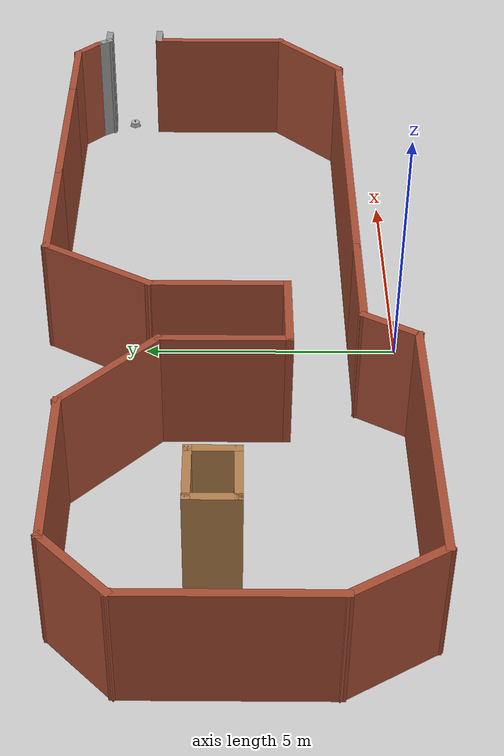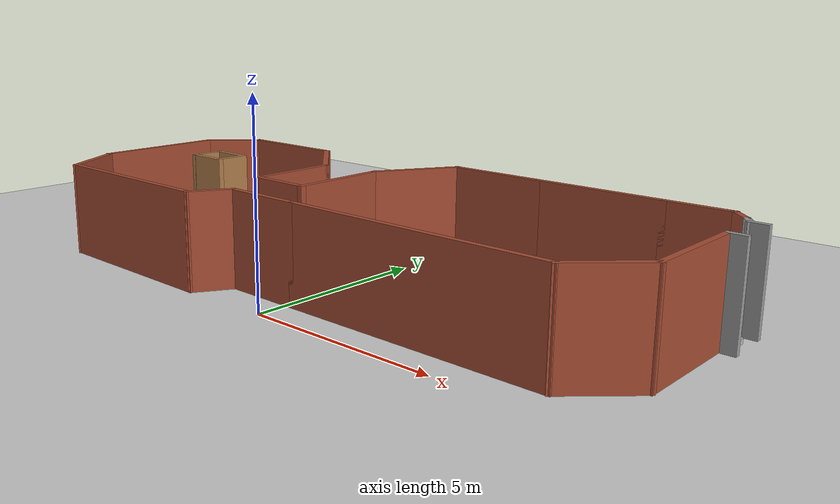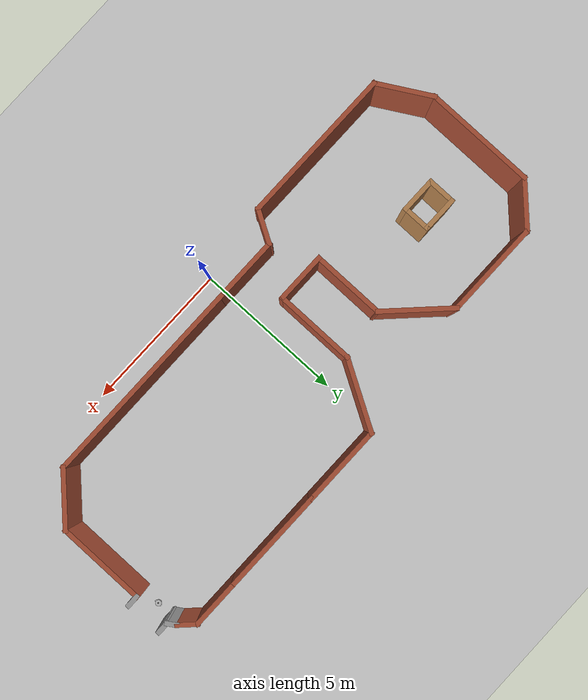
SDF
<sdf version="1.7">
 <world name="default">
  <light name="sun" type="directional">
   <pose>0 0 10 0 -0 0</pose>
   <diffuse>0.8 0.8 0.8 1</diffuse>
   <specular>0.2 0.2 0.2 1</specular>
   <attenuation>
    <range>1000</range>
    <constant>0.9</constant>
    <linear>0.01</linear>
    <quadratic>0.001</quadratic>
   </attenuation>
   <direction>-0.5 0.1 -0.9</direction>
   <spot><inner_angle>0</inner_angle><outer_angle>0</outer_angle><falloff>0</falloff></spot>
  </light>
  <model name="ground_plane">
   <static>1</static>
   <link name="link">
    <collision name="collision">
     <geometry><plane><normal>0 0 1</normal><size>100 100</size></plane></geometry>
     <surface><friction><ode><mu>100</mu><mu2>50</mu2></ode></friction></surface>
    </collision>
    <visual name="visual">
     <cast_shadows>0</cast_shadows>
     <geometry><plane><normal>0 0 1</normal><size>100 100</size></plane></geometry>
     <material>
      <script><uri>file://media/materials/scripts/gazebo.material</uri><name>Gazebo/Grey</name></script>
     </material>
    </visual>
   </link>
  </model>
  <gravity>0 0 -9.8</gravity>
  <magnetic_field>6e-06 2.3e-05 -4.2e-05</magnetic_field>
  <atmosphere type="adiabatic"/>
  <physics type="ode">
   <max_step_size>0.001</max_step_size>
   <real_time_factor>1</real_time_factor>
   <real_time_update_rate>1000</real_time_update_rate>
  </physics>
  <scene><ambient>0.4 0.4 0.4 1</ambient><background>0.7 0.7 0.7 1</background><shadows>1</shadows></scene>
  <audio><device>default</device></audio>
  <spherical_coordinates>
   <surface_model>EARTH_WGS84</surface_model>
   <latitude_deg>0</latitude_deg>
   <longitude_deg>0</longitude_deg>
   <elevation>0</elevation>
   <heading_deg>0</heading_deg>
  </spherical_coordinates>
  <model name="world-modul">
   <pose>0.13036 3.82608 0 0 -0 0</pose>
   <link name="Wall_0">
    <collision name="Wall_0_Collision">
     <geometry><box><size>2.75 0.15 2.5</size></box></geometry>
     <pose>0 0 1.25 0 -0 0</pose>
    </collision>
    <visual name="Wall_0_Visual">
     <pose>0 0 1.25 0 -0 0</pose>
     <geometry><box><size>2.75 0.15 2.5</size></box></geometry>
     <material>
      <script><uri>file://media/materials/scripts/gazebo.material</uri><name>Gazebo/Bricks</name></script>
      <ambient>1 1 1 1</ambient>
     </material>
     <meta><layer>0</layer></meta>
    </visual>
    <pose>1.39203 3.04502 0 0 -0 3.14159</pose>
   </link>
   <link name="Wall_1">
    <collision name="Wall_1_Collision">
     <geometry><box><size>2.5 0.15 2.5</size></box></geometry>
     <pose>0 0 1.25 0 -0 0</pose>
    </collision>
    <visual name="Wall_1_Visual">
     <pose>0 0 1.25 0 -0 0</pose>
     <geometry><box><size>2.5 0.15 2.5</size></box></geometry>
     <material>
      <script><uri>file://media/materials/scripts/gazebo.material</uri><name>Gazebo/Bricks</name></script>
      <ambient>1 1 1 1</ambient>
     </material>
     <meta><layer>0</layer></meta>
    </visual>
    <pose>-0.495469 2.02744 0 0 -0 -2.0944</pose>
   </link>
   <link name="Wall_10">
    <collision name="Wall_10_Collision">
     <geometry><box><size>5.25 0.15 2.5</size></box></geometry>
     <pose>0 0 1.25 0 -0 0</pose>
    </collision>
    <visual name="Wall_10_Visual">
     <pose>0 0 1.25 0 -0 0</pose>
     <geometry><box><size>5.25 0.15 2.5</size></box></geometry>
     <material>
      <script><uri>file://media/materials/scripts/gazebo.material</uri><name>Gazebo/Bricks</name></script>
      <ambient>1 1 1 1</ambient>
     </material>
     <meta><layer>0</layer></meta>
    </visual>
    <pose>-5.10104 -3.91196 0 0 -0 0</pose>
   </link>
   <link name="Wall_11">
    <collision name="Wall_11_Collision">
     <geometry><box><size>1.25 0.15 2.5</size></box></geometry>
     <pose>0 0 1.25 0 -0 0</pose>
    </collision>
    <visual name="Wall_11_Visual">
     <pose>0 0 1.25 0 -0 0</pose>
     <geometry><box><size>1.25 0.15 2.5</size></box></geometry>
     <material>
      <script><uri>file://media/materials/scripts/gazebo.material</uri><name>Gazebo/Bricks</name></script>
      <ambient>1 1 1 1</ambient>
     </material>
     <meta><layer>0</layer></meta>
    </visual>
    <pose>-2.27604 -3.43565 0 0 -0 1.0472</pose>
   </link>
   <link name="Wall_12">
    <collision name="Wall_12_Collision">
     <geometry><box><size>2.25 0.15 2.5</size></box></geometry>
     <pose>0 0 1.25 0 -0 0</pose>
    </collision>
    <visual name="Wall_12_Visual">
     <pose>0 0 1.25 0 -0 0</pose>
     <geometry><box><size>2.25 0.15 2.5</size></box></geometry>
     <material>
      <script><uri>file://media/materials/scripts/gazebo.material</uri><name>Gazebo/Bricks</name></script>
      <ambient>1 1 1 1</ambient>
     </material>
     <meta><layer>0</layer></meta>
    </visual>
    <pose>-0.95104 -2.95933 0 0 -0 0</pose>
   </link>
   <link name="Wall_13">
    <collision name="Wall_13_Collision">
     <geometry><box><size>7 0.15 2.5</size></box></geometry>
     <pose>0 0 1.25 0 -0 0</pose>
    </collision>
    <visual name="Wall_13_Visual">
     <pose>0 0 1.25 0 -0 0</pose>
     <geometry><box><size>7 0.15 2.5</size></box></geometry>
     <material>
      <script><uri>file://media/materials/scripts/gazebo.material</uri><name>Gazebo/Bricks</name></script>
      <ambient>1 1 1 1</ambient>
     </material>
     <meta><layer>0</layer></meta>
    </visual>
    <pose>3.52396 -2.95933 0 0 -0 0</pose>
   </link>
   <link name="Wall_14">
    <collision name="Wall_14_Collision">
     <geometry><box><size>2 0.15 2.5</size></box></geometry>
     <pose>0 0 1.25 0 -0 0</pose>
    </collision>
    <visual name="Wall_14_Visual">
     <pose>0 0 1.25 0 -0 0</pose>
     <geometry><box><size>2 0.15 2.5</size></box></geometry>
     <material>
      <script><uri>file://media/materials/scripts/gazebo.material</uri><name>Gazebo/Bricks</name></script>
      <ambient>1 1 1 1</ambient>
     </material>
     <meta><layer>0</layer></meta>
    </visual>
    <pose>7.60303 -2.30526 0 0 -0 0.785398</pose>
   </link>
   <link name="Wall_15">
    <collision name="Wall_15_Collision">
     <geometry><box><size>3 0.15 2.5</size></box></geometry>
     <pose>0 0 1.25 0 -0 0</pose>
    </collision>
    <visual name="Wall_15_Visual">
     <pose>0 0 1.25 0 -0 0</pose>
     <geometry><box><size>3 0.15 2.5</size></box></geometry>
     <material>
      <script><uri>file://media/materials/scripts/gazebo.material</uri><name>Gazebo/Bricks</name></script>
      <ambient>1 1 1 1</ambient>
     </material>
     <meta><layer>0</layer></meta>
    </visual>
    <pose>8.25711 -0.226184 0 0 -0 1.5708</pose>
   </link>
   <link name="Wall_18">
    <collision name="Wall_18_Collision">
     <geometry><box><size>3.5 0.15 2.5</size></box></geometry>
     <pose>0 0 1.25 0 -0 0</pose>
    </collision>
    <visual name="Wall_18_Visual">
     <pose>0 0 1.25 0 -0 0</pose>
     <geometry><box><size>3.5 0.15 2.5</size></box></geometry>
     <material>
      <script><uri>file://media/materials/scripts/gazebo.material</uri><name>Gazebo/Bricks</name></script>
      <ambient>1 1 1 1</ambient>
     </material>
     <meta><layer>0</layer></meta>
    </visual>
    <pose>4.36703 3.04502 0 0 -0 0</pose>
   </link>
   <link name="Wall_19">
    <collision name="Wall_19_Collision">
     <geometry><box><size>1.75 0.15 2.5</size></box></geometry>
     <pose>0 0 1.25 0 -0 0</pose>
    </collision>
    <visual name="Wall_19_Visual">
     <pose>0 0 1.25 0 -0 0</pose>
     <geometry><box><size>1.75 0.15 2.5</size></box></geometry>
     <material>
      <script><uri>file://media/materials/scripts/gazebo.material</uri><name>Gazebo/Bricks</name></script>
      <ambient>1 1 1 1</ambient>
     </material>
     <meta><layer>0</layer></meta>
    </visual>
    <pose>6.84203 3.04502 0 0 -0 0</pose>
   </link>
   <link name="Wall_2">
    <collision name="Wall_2_Collision">
     <geometry><box><size>2.75 0.15 2.5</size></box></geometry>
     <pose>0 0 1.25 0 -0 0</pose>
    </collision>
    <visual name="Wall_2_Visual">
     <pose>0 0 1.25 0 -0 0</pose>
     <geometry><box><size>2.75 0.15 2.5</size></box></geometry>
     <material>
      <script><uri>file://media/materials/scripts/gazebo.material</uri><name>Gazebo/Bricks</name></script>
      <ambient>1 1 1 1</ambient>
     </material>
     <meta><layer>0</layer></meta>
    </visual>
    <pose>-1.08297 -0.290142 0 0 -0 -1.5708</pose>
   </link>
   <link name="Wall_20">
    <collision name="Wall_20_Collision">
     <geometry><box><size>0.75 0.15 2.5</size></box></geometry>
     <pose>0 0 1.25 0 -0 0</pose>
    </collision>
    <visual name="Wall_20_Visual">
     <pose>0 0 1.25 0 -0 0</pose>
     <geometry><box><size>0.75 0.15 2.5</size></box></geometry>
     <material>
      <script><uri>file://media/materials/scripts/gazebo.material</uri><name>Gazebo/Bricks</name></script>
      <ambient>1 1 1 1</ambient>
     </material>
     <meta><layer>0</layer></meta>
    </visual>
    <pose>7.85416 2.83289 0 0 -0 -0.785398</pose>
   </link>
   <link name="Wall_21">
    <collision name="Wall_21_Collision">
     <geometry><box><size>0.447066 0.15 2.5</size></box></geometry>
     <pose>0 0 1.25 0 -0 0</pose>
    </collision>
    <visual name="Wall_21_Visual">
     <pose>0 0 1.25 0 -0 0</pose>
     <geometry><box><size>0.447066 0.15 2.5</size></box></geometry>
     <material>
      <script><uri>file://media/materials/scripts/gazebo.material</uri><name>Gazebo/Grey</name></script>
      <ambient>1 1 1 1</ambient>
     </material>
     <meta><layer>0</layer></meta>
    </visual>
    <pose>8.14845 2.49701 0 0 -0 -0.984698</pose>
   </link>
   <link name="Wall_22">
    <collision name="Wall_22_Collision">
     <geometry><box><size>0.5 0.15 2.5</size></box></geometry>
     <pose>0 0 1.25 0 -0 0</pose>
    </collision>
    <visual name="Wall_22_Visual">
     <pose>0 0 1.25 0 -0 0</pose>
     <geometry><box><size>0.5 0.15 2.5</size></box></geometry>
     <material>
      <script><uri>file://media/materials/scripts/gazebo.material</uri><name>Gazebo/Grey</name></script>
      <ambient>1 1 1 1</ambient>
     </material>
     <meta><layer>0</layer></meta>
    </visual>
    <pose>8.39805 2.37327 0 0 -0 0</pose>
   </link>
   <link name="Wall_24">
    <collision name="Wall_24_Collision">
     <geometry><box><size>0.5 0.15 2.5</size></box></geometry>
     <pose>0 0 1.25 0 -0 0</pose>
    </collision>
    <visual name="Wall_24_Visual">
     <pose>0 0 1.25 0 -0 0</pose>
     <geometry><box><size>0.5 0.15 2.5</size></box></geometry>
     <material>
      <script><uri>file://media/materials/scripts/gazebo.material</uri><name>Gazebo/Grey</name></script>
      <ambient>1 1 1 1</ambient>
     </material>
     <meta><layer>0</layer></meta>
    </visual>
    <pose>8.43211 1.19882 0 0 -0 0</pose>
   </link>
   <link name="Wall_3">
    <collision name="Wall_3_Collision">
     <geometry><box><size>1.75 0.15 2.5</size></box></geometry>
     <pose>0 0 1.25 0 -0 0</pose>
    </collision>
    <visual name="Wall_3_Visual">
     <pose>0 0 1.25 0 -0 0</pose>
     <geometry><box><size>1.75 0.15 2.5</size></box></geometry>
     <material>
      <script><uri>file://media/materials/scripts/gazebo.material</uri><name>Gazebo/Bricks</name></script>
      <ambient>1 1 1 1</ambient>
     </material>
     <meta><layer>0</layer></meta>
    </visual>
    <pose>-1.88297 -1.59014 0 0 -0 3.14159</pose>
   </link>
   <link name="Wall_4">
    <collision name="Wall_4_Collision">
     <geometry><box><size>2.5 0.15 2.5</size></box></geometry>
     <pose>0 0 1.25 0 -0 0</pose>
    </collision>
    <visual name="Wall_4_Visual">
     <pose>0 0 1.25 0 -0 0</pose>
     <geometry><box><size>2.5 0.15 2.5</size></box></geometry>
     <material>
      <script><uri>file://media/materials/scripts/gazebo.material</uri><name>Gazebo/Bricks</name></script>
      <ambient>1 1 1 1</ambient>
     </material>
     <meta><layer>0</layer></meta>
    </visual>
    <pose>-2.68297 -0.415142 0 0 -0 1.5708</pose>
   </link>
   <link name="Wall_48">
    <collision name="Wall_48_Collision">
     <geometry><box><size>1.25 0.15 2.5</size></box></geometry>
     <pose>0 0 1.25 0 -0 0</pose>
    </collision>
    <visual name="Wall_48_Visual">
     <pose>0 0 1.25 0 -0 0</pose>
     <geometry><box><size>1.25 0.15 2.5</size></box></geometry>
     <material>
      <script><uri>file://media/materials/scripts/gazebo.material</uri><name>Gazebo/Wood</name></script>
      <ambient>1 1 1 1</ambient>
     </material>
     <meta><layer>0</layer></meta>
    </visual>
    <pose>-6.05415 0.17022 0 0 -0 0</pose>
   </link>
   <link name="Wall_49">
    <collision name="Wall_49_Collision">
     <geometry><box><size>1 0.15 2.5</size></box></geometry>
     <pose>0 0 1.25 0 -0 0</pose>
    </collision>
    <visual name="Wall_49_Visual">
     <pose>0 0 1.25 0 -0 0</pose>
     <geometry><box><size>1 0.15 2.5</size></box></geometry>
     <material>
      <script><uri>file://media/materials/scripts/gazebo.material</uri><name>Gazebo/Wood</name></script>
      <ambient>1 1 1 1</ambient>
     </material>
     <meta><layer>0</layer></meta>
    </visual>
    <pose>-5.50415 -0.25478 0 0 -0 -1.5708</pose>
   </link>
   <link name="Wall_5">
    <collision name="Wall_5_Collision">
     <geometry><box><size>2.5 0.15 2.5</size></box></geometry>
     <pose>0 0 1.25 0 -0 0</pose>
    </collision>
    <visual name="Wall_5_Visual">
     <pose>0 0 1.25 0 -0 0</pose>
     <geometry><box><size>2.5 0.15 2.5</size></box></geometry>
     <material>
      <script><uri>file://media/materials/scripts/gazebo.material</uri><name>Gazebo/Bricks</name></script>
      <ambient>1 1 1 1</ambient>
     </material>
     <meta><layer>0</layer></meta>
    </visual>
    <pose>-3.51382 1.59071 0 0 -0 2.35619</pose>
   </link>
   <link name="Wall_50">
    <collision name="Wall_50_Collision">
     <geometry><box><size>1.25 0.15 2.5</size></box></geometry>
     <pose>0 0 1.25 0 -0 0</pose>
    </collision>
    <visual name="Wall_50_Visual">
     <pose>0 0 1.25 0 -0 0</pose>
     <geometry><box><size>1.25 0.15 2.5</size></box></geometry>
     <material>
      <script><uri>file://media/materials/scripts/gazebo.material</uri><name>Gazebo/Wood</name></script>
      <ambient>1 1 1 1</ambient>
     </material>
     <meta><layer>0</layer></meta>
    </visual>
    <pose>-6.05415 -0.67978 0 0 -0 3.14159</pose>
   </link>
   <link name="Wall_51">
    <collision name="Wall_51_Collision">
     <geometry><box><size>1 0.15 2.5</size></box></geometry>
     <pose>0 0 1.25 0 -0 0</pose>
    </collision>
    <visual name="Wall_51_Visual">
     <pose>0 0 1.25 0 -0 0</pose>
     <geometry><box><size>1 0.15 2.5</size></box></geometry>
     <material>
      <script><uri>file://media/materials/scripts/gazebo.material</uri><name>Gazebo/Wood</name></script>
      <ambient>1 1 1 1</ambient>
     </material>
     <meta><layer>0</layer></meta>
    </visual>
    <pose>-6.60416 -0.25478 0 0 -0 1.5708</pose>
   </link>
   <link name="Wall_6">
    <collision name="Wall_6_Collision">
     <geometry><box><size>3.25 0.15 2.5</size></box></geometry>
     <pose>0 0 1.25 0 -0 0</pose>
    </collision>
    <visual name="Wall_6_Visual">
     <pose>0 0 1.25 0 -0 0</pose>
     <geometry><box><size>3.25 0.15 2.5</size></box></geometry>
     <material>
      <script><uri>file://media/materials/scripts/gazebo.material</uri><name>Gazebo/Bricks</name></script>
      <ambient>1 1 1 1</ambient>
     </material>
     <meta><layer>0</layer></meta>
    </visual>
    <pose>-5.89467 2.42156 0 0 -0 3.14159</pose>
   </link>
   <link name="Wall_7">
    <collision name="Wall_7_Collision">
     <geometry><box><size>1.75 0.15 2.5</size></box></geometry>
     <pose>0 0 1.25 0 -0 0</pose>
    </collision>
    <visual name="Wall_7_Visual">
     <pose>0 0 1.25 0 -0 0</pose>
     <geometry><box><size>1.75 0.15 2.5</size></box></geometry>
     <material>
      <script><uri>file://media/materials/scripts/gazebo.material</uri><name>Gazebo/Bricks</name></script>
      <ambient>1 1 1 1</ambient>
     </material>
     <meta><layer>0</layer></meta>
    </visual>
    <pose>-8.01036 1.85587 0 0 -0 -2.35619</pose>
   </link>
   <link name="Wall_8">
    <collision name="Wall_8_Collision">
     <geometry><box><size>3.75 0.15 2.5</size></box></geometry>
     <pose>0 0 1.25 0 -0 0</pose>
    </collision>
    <visual name="Wall_8_Visual">
     <pose>0 0 1.25 0 -0 0</pose>
     <geometry><box><size>3.75 0.15 2.5</size></box></geometry>
     <material>
      <script><uri>file://media/materials/scripts/gazebo.material</uri><name>Gazebo/Bricks</name></script>
      <ambient>1 1 1 1</ambient>
     </material>
     <meta><layer>0</layer></meta>
    </visual>
    <pose>-8.57604 -0.509812 0 0 -0 -1.5708</pose>
   </link>
   <link name="Wall_9">
    <collision name="Wall_9_Collision">
     <geometry><box><size>2 0.15 2.5</size></box></geometry>
     <pose>0 0 1.25 0 -0 0</pose>
    </collision>
    <visual name="Wall_9_Visual">
     <pose>0 0 1.25 0 -0 0</pose>
     <geometry><box><size>2 0.15 2.5</size></box></geometry>
     <material>
      <script><uri>file://media/materials/scripts/gazebo.material</uri><name>Gazebo/Bricks</name></script>
      <ambient>1 1 1 1</ambient>
     </material>
     <meta><layer>0</layer></meta>
    </visual>
    <pose>-8.11354 -3.11089 0 0 -0 -1.0472</pose>
   </link>
   <static>1</static>
  </model>
  <model name="my_robot">
   <link name="base_footprint">
    <inertial>
     <pose>0.002857 0 0.095 0 -0 0</pose>
     <mass>0.42</mass>
     <inertia>
      <ixx>0.0134043</ixx>
      <ixy>0</ixy>
      <ixz>0.000114</ixz>
      <iyy>0.0134728</iyy>
      <iyz>0</iyz>
      <izz>0.0211486</izz>
     </inertia>
    </inertial>
    <collision name="base_footprint_fixed_joint_lump__base_link_collision">
     <pose>0 0 0.076 0 -0 0</pose>
     <geometry><cylinder><length>0.12</length><radius>0.1</radius></cylinder></geometry>
    </collision>
    <collision name="base_footprint_fixed_joint_lump__caster_link_collision_1">
     <pose>0.06 0 0 1.57079 -0 0</pose>
     <geometry><sphere><radius>0.016</radius></sphere></geometry>
     <surface>
      <contact><ode><kp>1e+06</kp><kd>10</kd></ode></contact>
      <friction><ode><mu>0</mu><mu2>0</mu2></ode></friction>
     </surface>
    </collision>
    <collision name="base_footprint_fixed_joint_lump__imu_link_collision_2">
     <pose>0 0 0.096 0 -0 0</pose>
     <geometry><box><size>0.02 0.02 0.02</size></box></geometry>
    </collision>
    <collision name="base_footprint_fixed_joint_lump__laser_link_collision_3">
     <pose>0 0 0.151 0 -0 0</pose>
     <geometry><cylinder><length>0.02</length><radius>0.02</radius></cylinder></geometry>
    </collision>
    <visual name="base_footprint_fixed_joint_lump__base_link_visual">
     <pose>0 0 0.076 0 -0 0</pose>
     <geometry><cylinder><length>0.12</length><radius>0.1</radius></cylinder></geometry>
    </visual>
    <visual name="base_footprint_fixed_joint_lump__caster_link_visual_1">
     <pose>0.06 0 0 1.57079 -0 0</pose>
     <geometry><sphere><radius>0.016</radius></sphere></geometry>
     <material>
      <script><name>Gazebo/Black</name><uri>file://media/materials/scripts/gazebo.material</uri></script>
     </material>
    </visual>
    <visual name="base_footprint_fixed_joint_lump__imu_link_visual_2">
     <pose>0 0 0.096 0 -0 0</pose>
     <geometry><box><size>0.02 0.02 0.02</size></box></geometry>
    </visual>
    <visual name="base_footprint_fixed_joint_lump__laser_link_visual_3">
     <pose>0 0 0.151 0 -0 0</pose>
     <geometry><cylinder><length>0.02</length><radius>0.02</radius></cylinder></geometry>
     <material>
      <script><name>Gazebo/Black</name><uri>file://media/materials/scripts/gazebo.material</uri></script>
     </material>
    </visual>
    <sensor name="imu_sensor" type="imu">
     <plugin name="imu_plugin" filename="libgazebo_ros_imu_sensor.so">
      <ros><namespace>/</namespace><remapping>~/out:=imu</remapping></ros>
      <initial_orientation_as_reference>0</initial_orientation_as_reference>
     </plugin>
     <always_on>1</always_on>
     <update_rate>100</update_rate>
     <visualize>1</visualize>
     <imu>
      <angular_velocity>
       <x>
        <noise type="gaussian">
         <mean>0</mean>
         <stddev>0.0002</stddev>
         <bias_mean>7.5e-06</bias_mean>
         <bias_stddev>8e-07</bias_stddev>
        </noise>
       </x>
       <y>
        <noise type="gaussian">
         <mean>0</mean>
         <stddev>0.0002</stddev>
         <bias_mean>7.5e-06</bias_mean>
         <bias_stddev>8e-07</bias_stddev>
        </noise>
       </y>
       <z>
        <noise type="gaussian">
         <mean>0</mean>
         <stddev>0.0002</stddev>
         <bias_mean>7.5e-06</bias_mean>
         <bias_stddev>8e-07</bias_stddev>
        </noise>
       </z>
      </angular_velocity>
      <linear_acceleration>
       <x>
        <noise type="gaussian">
         <mean>0</mean>
         <stddev>0.017</stddev>
         <bias_mean>0.1</bias_mean>
         <bias_stddev>0.001</bias_stddev>
        </noise>
       </x>
       <y>
        <noise type="gaussian">
         <mean>0</mean>
         <stddev>0.017</stddev>
         <bias_mean>0.1</bias_mean>
         <bias_stddev>0.001</bias_stddev>
        </noise>
       </y>
       <z>
        <noise type="gaussian">
         <mean>0</mean>
         <stddev>0.017</stddev>
         <bias_mean>0.1</bias_mean>
         <bias_stddev>0.001</bias_stddev>
        </noise>
       </z>
      </linear_acceleration>
     </imu>
     <pose>0 0 0.096 0 -0 0</pose>
    </sensor>
    <sensor name="laser_sensor" type="ray">
     <always_on>1</always_on>
     <visualize>1</visualize>
     <update_rate>5</update_rate>
     <ray>
      <scan>
       <horizontal>
        <samples>360</samples>
        <resolution>1</resolution>
        <min_angle>0</min_angle>
        <max_angle>6.28</max_angle>
       </horizontal>
       <vertical><samples>1</samples><min_angle>0</min_angle><max_angle>0</max_angle></vertical>
      </scan>
      <range><min>0.12</min><max>3.5</max><resolution>0.015</resolution></range>
      <noise><type>gaussian</type><mean>0</mean><stddev>0.01</stddev></noise>
     </ray>
     <plugin name="laserscan" filename="libgazebo_ros_ray_sensor.so">
      <ros><remapping>~/out:=scan</remapping></ros>
      <output_type>sensor_msgs/LaserScan</output_type>
      <frame_name>laser_link</frame_name>
     </plugin>
     <pose>0 0 0.151 0 -0 0</pose>
    </sensor>
   </link>
   <joint name="left_wheel_joint" type="revolute">
    <pose relative_to="base_footprint">-0.02 0.1 0.016 0 -0 0</pose>
    <parent>base_footprint</parent>
    <child>left_wheel_link</child>
    <axis>
     <xyz>0 1 0</xyz>
     <limit><lower>-1e+16</lower><upper>1e+16</upper></limit>
     <dynamics><spring_reference>0</spring_reference><spring_stiffness>0</spring_stiffness></dynamics>
    </axis>
   </joint>
   <link name="left_wheel_link">
    <pose relative_to="left_wheel_joint">0 0 0 0 -0 0</pose>
    <inertial>
     <mass>0.2</mass>
     <inertia>
      <ixx>0.000190417</ixx>
      <ixy>0</ixy>
      <ixz>0</ixz>
      <iyy>0.0001904</iyy>
      <iyz>0</iyz>
      <izz>0.00036</izz>
     </inertia>
    </inertial>
    <collision name="left_wheel_link_collision">
     <pose>0 0 0 1.57079 -0 0</pose>
     <geometry><cylinder><length>0.04</length><radius>0.032</radius></cylinder></geometry>
    </collision>
    <visual name="left_wheel_link_visual">
     <pose>0 0 0 1.57079 -0 0</pose>
     <geometry><cylinder><length>0.04</length><radius>0.032</radius></cylinder></geometry>
    </visual>
   </link>
   <joint name="right_wheel_joint" type="revolute">
    <pose relative_to="base_footprint">-0.02 -0.1 0.016 0 -0 0</pose>
    <parent>base_footprint</parent>
    <child>right_wheel_link</child>
    <axis>
     <xyz>0 1 0</xyz>
     <limit><lower>-1e+16</lower><upper>1e+16</upper></limit>
     <dynamics><spring_reference>0</spring_reference><spring_stiffness>0</spring_stiffness></dynamics>
    </axis>
   </joint>
   <link name="right_wheel_link">
    <pose relative_to="right_wheel_joint">0 0 0 0 -0 0</pose>
    <inertial>
     <mass>0.2</mass>
     <inertia>
      <ixx>0.000190417</ixx>
      <ixy>0</ixy>
      <ixz>0</ixz>
      <iyy>0.0001904</iyy>
      <iyz>0</iyz>
      <izz>0.00036</izz>
     </inertia>
    </inertial>
    <collision name="right_wheel_link_collision">
     <pose>0 0 0 1.57079 -0 0</pose>
     <geometry><cylinder><length>0.04</length><radius>0.032</radius></cylinder></geometry>
    </collision>
    <visual name="right_wheel_link_visual">
     <pose>0 0 0 1.57079 -0 0</pose>
     <geometry><cylinder><length>0.04</length><radius>0.032</radius></cylinder></geometry>
    </visual>
   </link>
   <static>0</static>
   <plugin name="diff_drive" filename="libgazebo_ros_diff_drive.so">
    <ros><namespace>/</namespace><remapping>cmd_vel:=cmd_vel</remapping><remapping>odom:=odom</remapping></ros>
    <update_rate>30</update_rate>
    <left_joint>left_wheel_joint</left_joint>
    <right_joint>right_wheel_joint</right_joint>
    <wheel_separation>0.2</wheel_separation>
    <wheel_diameter>0.065</wheel_diameter>
    <max_wheel_torque>20</max_wheel_torque>
    <max_wheel_acceleration>1.0</max_wheel_acceleration>
    <publish_odom>1</publish_odom>
    <publish_odom_tf>1</publish_odom_tf>
    <publish_wheel_tf>0</publish_wheel_tf>
    <odometry_frame>odom</odometry_frame>
    <robot_base_frame>base_footprint</robot_base_frame>
   </plugin>
   <plugin name="fishbot_joint_state" filename="libgazebo_ros_joint_state_publisher.so">
    <ros><remapping>~/out:=joint_states</remapping></ros>
    <update_rate>30</update_rate>
    <joint_name>right_wheel_joint</joint_name>
    <joint_name>left_wheel_joint</joint_name>
   </plugin>
   <pose>8.54458 5.68088 0.016 1e-06 1.5e-05 -3.13922</pose>
  </model>
 </world>
</sdf>
